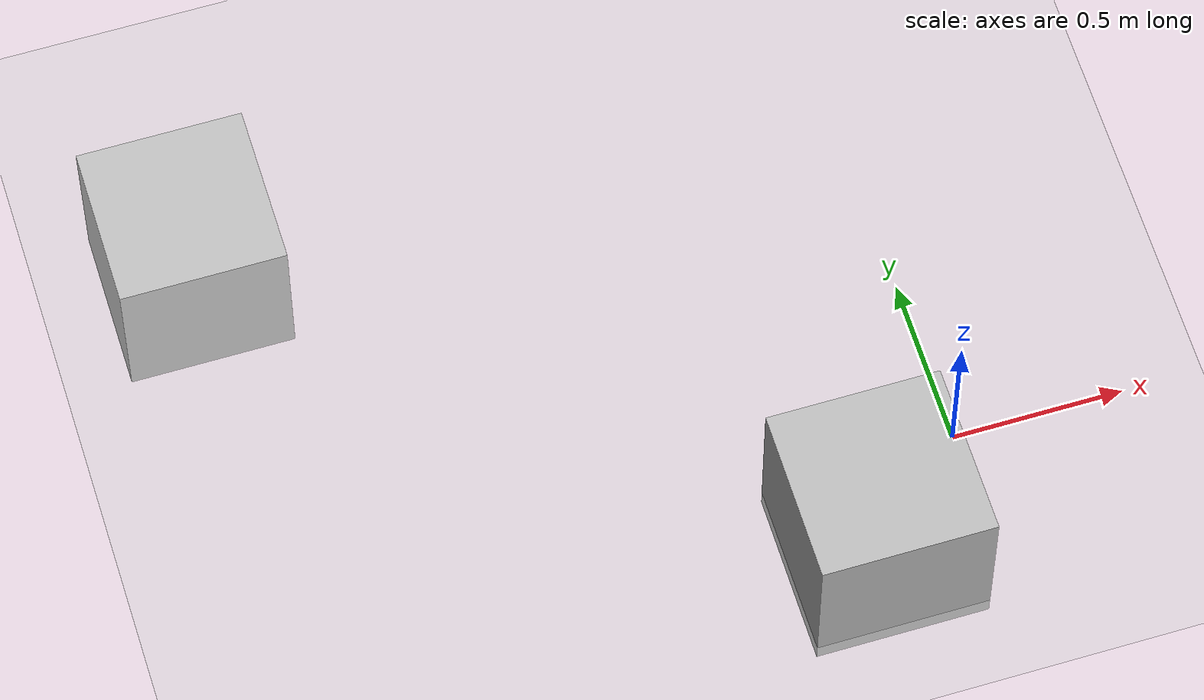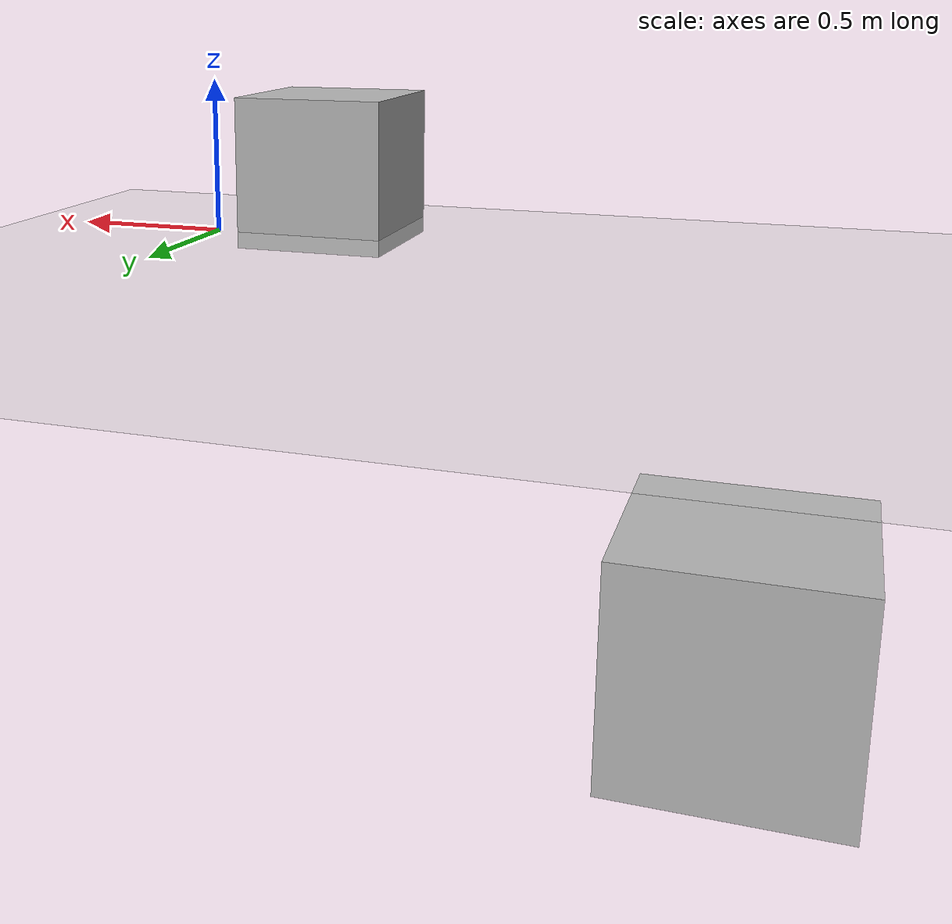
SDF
<sdf version='1.10'>
  <world name='empty'>
    <physics name='1ms' type='ignored'>
      <max_step_size>0.001</max_step_size>
      <real_time_factor>1</real_time_factor>
      <real_time_update_rate>1000</real_time_update_rate>
    </physics>
    <plugin
      filename="gz-sim-sensors-system"
      name="gz::sim::systems::Sensors">
      <render_engine>ogre2</render_engine>
    </plugin>
    <plugin name='gz::sim::systems::Physics' filename='gz-sim-physics-system'/>
    <plugin name='gz::sim::systems::UserCommands' filename='gz-sim-user-commands-system'/>
    <plugin name='gz::sim::systems::SceneBroadcaster' filename='gz-sim-scene-broadcaster-system'/>
    <plugin name='gz::sim::systems::Contact' filename='gz-sim-contact-system'/>
    <gravity>0 0 -9.8000000000000007</gravity>
    <magnetic_field>5.5644999999999998e-06 2.2875799999999999e-05 -4.2388400000000002e-05</magnetic_field>
    <atmosphere type='adiabatic'/>
    <scene>
      <ambient>0.400000006 0.400000006 0.400000006 1</ambient>
      <background>0.699999988 0.699999988 0.699999988 1</background>
      <shadows>true</shadows>
    </scene>
    <model name='ground_plane'>
      <static>true</static>
      <link name='link'>
        <collision name='collision'>
          <geometry>
            <plane>
              <normal>0 0 1</normal>
              <size>100 100</size>
            </plane>
          </geometry>
          <surface>
            <friction>
              <ode/>
            </friction>
            <bounce/>
            <contact/>
          </surface>
        </collision>
        <visual name='visual'>
          <geometry>
            <plane>
              <normal>0 0 1</normal>
              <size>100 100</size>
            </plane>
          </geometry>
          <material>
            <ambient>0.800000012 0.800000012 0.800000012 1</ambient>
            <diffuse>0.800000012 0.800000012 0.800000012 1</diffuse>
            <specular>0.800000012 0.800000012 0.800000012 1</specular>
          </material>
        </visual>
        <pose>0 0 0 0 0 0</pose>
        <inertial>
          <pose>0 0 0 0 0 0</pose>
          <mass>1</mass>
          <inertia>
            <ixx>1</ixx>
            <ixy>0</ixy>
            <ixz>0</ixz>
            <iyy>1</iyy>
            <iyz>0</iyz>
            <izz>1</izz>
          </inertia>
        </inertial>
        <enable_wind>false</enable_wind>
      </link>
      <pose>0 0 0 0 0 0</pose>
      <self_collide>false</self_collide>
    </model>
    <model name='aruco_zero'>
      <link name='link'>
        <visual name='visual'>
          <geometry>
            <mesh>
              <uri>file:///home/akshat/projects/arucobot/src/arucobot_description/meshes/aruco_zero.dae</uri>
              <scale>0.5 0.5 0.5</scale>
            </mesh>
          </geometry>
        </visual>
        <collision name='collision'>
          <geometry>
            <mesh>
              <uri>file:///home/akshat/projects/arucobot/src/arucobot_description/meshes/aruco_zero.dae</uri>
              <scale>0.5 0.5 0.5</scale>
            </mesh>
          </geometry>
        </collision>
        <pose>0 0 0 0 0 0</pose>
        <inertial>
          <pose>0 0 0 0 0 0</pose>
          <mass>1</mass>
          <inertia>
            <ixx>1</ixx>
            <ixy>0</ixy>
            <ixz>0</ixz>
            <iyy>1</iyy>
            <iyz>0</iyz>
            <izz>1</izz>
          </inertia>
        </inertial>
        <enable_wind>false</enable_wind>
      </link>
      <pose>-0.31329197295177735 -0.25931738647331698 0.1921791486084633 5.074986244282834e-17 -1.7181805433642283e-16 1.5702538824283186e-18</pose>
      <static>false</static>
      <self_collide>false</self_collide>
    </model>
    <model name='aruco_one'>
      <link name='link'>
        <visual name='visual'>
          <geometry>
            <mesh>
              <uri>file:///home/akshat/projects/arucobot/src/arucobot_description/meshes/aruco_one.dae</uri>
              <scale>0.5 0.5 0.5</scale>
            </mesh>
          </geometry>
        </visual>
        <collision name='collision'>
          <geometry>
            <mesh>
              <uri>file:///home/akshat/projects/arucobot/src/arucobot_description/meshes/aruco_one.dae</uri>
              <scale>0.5 0.5 0.5</scale>
            </mesh>
          </geometry>
        </collision>
        <pose>0 0 0 0 0 0</pose>
        <inertial>
          <pose>0 0 0 0 0 0</pose>
          <mass>1</mass>
          <inertia>
            <ixx>1</ixx>
            <ixy>0</ixy>
            <ixz>0</ixz>
            <iyy>1</iyy>
            <iyz>0</iyz>
            <izz>1</izz>
          </inertia>
        </inertial>
        <enable_wind>false</enable_wind>
      </link>
      <pose>-1.8469619372009469 1.4903247150076959 -1.4775480603163982 1.5707959113748193 -3.9336528701509866e-10 1.320636412105667e-06</pose>
      <static>false</static>
      <self_collide>false</self_collide>
    </model>
    <light name='sun' type='directional'>
      <pose>0 0 10 0 0 0</pose>
      <cast_shadows>true</cast_shadows>
      <intensity>1</intensity>
      <direction>-0.5 0.10000000000000001 -0.90000000000000002</direction>
      <diffuse>0.800000012 0.800000012 0.800000012 1</diffuse>
      <specular>0.200000003 0.200000003 0.200000003 1</specular>
      <attenuation>
        <range>1000</range>
        <linear>0.0099999997764825821</linear>
        <constant>0.89999997615814209</constant>
        <quadratic>0.0010000000474974513</quadratic>
      </attenuation>
      <spot>
        <inner_angle>0</inner_angle>
        <outer_angle>0</outer_angle>
        <falloff>0</falloff>
      </spot>
    </light>
  </world>
</sdf>
